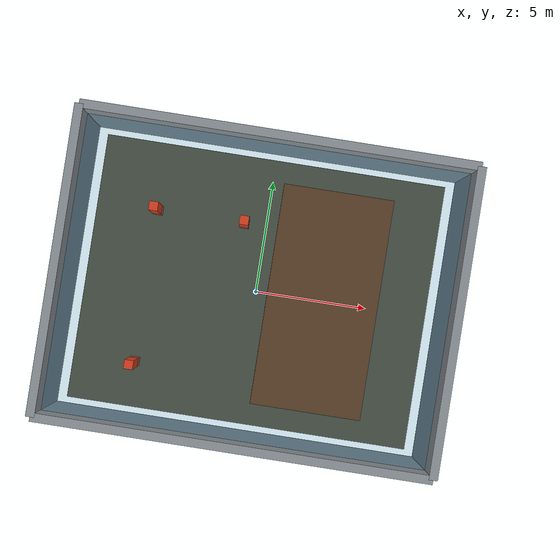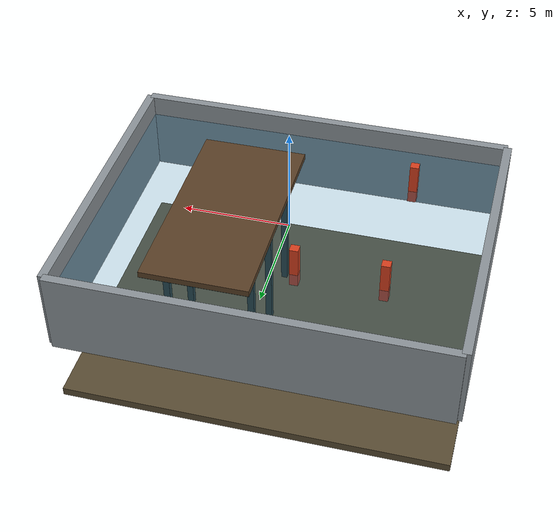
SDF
<?xml version='1.0' encoding='utf-8'?>
<sdf version="1.7">
  <world name="surface_harbor">
    <physics name="marine_physics" type="ode">
      <max_step_size>0.001</max_step_size>
      <real_time_factor>1</real_time_factor>
    </physics>
    <gravity>0 0 -9.81</gravity>
    <plugin filename="ignition-gazebo-physics-system" name="ignition::gazebo::systems::Physics" />
    <plugin filename="ignition-gazebo-user-commands-system" name="ignition::gazebo::systems::UserCommands" />
    <plugin filename="ignition-gazebo-scene-broadcaster-system" name="ignition::gazebo::systems::SceneBroadcaster" />
    <plugin filename="ignition-gazebo-sensors-system" name="ignition::gazebo::systems::Sensors">
      <render_engine>ogre2</render_engine>
    </plugin>
    <plugin filename="ignition-gazebo-imu-system" name="ignition::gazebo::systems::Imu" />
    <plugin filename="ignition-gazebo-buoyancy-system" name="ignition::gazebo::systems::Buoyancy">
      <graded_buoyancy>
        <default_density>1025</default_density>
        <density_change>
          <above_depth>0</above_depth>
          <density>1.225</density>
        </density_change>
      </graded_buoyancy>
      <enable>lab_usv</enable>
    </plugin>
    <scene>
      <ambient>.3 .55 .6 1</ambient>
      <background>.05 .18 .25 1</background>
    </scene>
    <light name="sun" type="directional">
      <pose>0 0 10 0 0 0</pose>
      <diffuse>.8 .9 1 1</diffuse>
      <direction>-.3 .2 -1</direction>
    </light>
    <model name="seafloor">
      <static>true</static>
      <pose>0 0 -6.2 0 0 0</pose>
      <link name="link">
        <visual name="visual">
          <geometry>
            <box>
              <size>18 14 0.4</size>
            </box>
          </geometry>
          <material>
            <ambient>.35 .3 .2 1</ambient>
            <diffuse>.35 .3 .2 1</diffuse>
          </material>
        </visual>
        <collision name="collision">
          <geometry>
            <box>
              <size>18 14 0.4</size>
            </box>
          </geometry>
        </collision>
      </link>
    </model>
    <model name="water_surface">
      <static>true</static>
      <pose>0 0 0 0 0 0</pose>
      <link name="link">
        <visual name="visual">
          <geometry>
            <box>
              <size>18 14 0.015</size>
            </box>
          </geometry>
          <material>
            <ambient>0 .4 .6 .18</ambient>
            <diffuse>0 .4 .6 .18</diffuse>
          </material>
        </visual>
      </link>
    </model>
    <model name="dock">
      <static>true</static>
      <pose>3 0 0.15 0 0 0</pose>
      <link name="link">
        <visual name="visual">
          <geometry>
            <box>
              <size>5 10 0.3</size>
            </box>
          </geometry>
          <material>
            <ambient>.35 .25 .15 1</ambient>
            <diffuse>.35 .25 .15 1</diffuse>
          </material>
        </visual>
        <collision name="collision">
          <geometry>
            <box>
              <size>5 10 0.3</size>
            </box>
          </geometry>
        </collision>
      </link>
    </model>
    <model name="harbor_piling_0">
      <static>true</static>
      <pose>1 -3 -3 0 0 0</pose>
      <link name="link">
        <visual name="visual">
          <geometry>
            <box>
              <size>0.3 0.3 6</size>
            </box>
          </geometry>
          <material>
            <ambient>.2 .22 .2 1</ambient>
            <diffuse>.2 .22 .2 1</diffuse>
          </material>
        </visual>
        <collision name="collision">
          <geometry>
            <box>
              <size>0.3 0.3 6</size>
            </box>
          </geometry>
        </collision>
      </link>
    </model>
    <model name="harbor_piling_1">
      <static>true</static>
      <pose>1 0 -3 0 0 0</pose>
      <link name="link">
        <visual name="visual">
          <geometry>
            <box>
              <size>0.3 0.3 6</size>
            </box>
          </geometry>
          <material>
            <ambient>.2 .22 .2 1</ambient>
            <diffuse>.2 .22 .2 1</diffuse>
          </material>
        </visual>
        <collision name="collision">
          <geometry>
            <box>
              <size>0.3 0.3 6</size>
            </box>
          </geometry>
        </collision>
      </link>
    </model>
    <model name="harbor_piling_2">
      <static>true</static>
      <pose>1 3 -3 0 0 0</pose>
      <link name="link">
        <visual name="visual">
          <geometry>
            <box>
              <size>0.3 0.3 6</size>
            </box>
          </geometry>
          <material>
            <ambient>.2 .22 .2 1</ambient>
            <diffuse>.2 .22 .2 1</diffuse>
          </material>
        </visual>
        <collision name="collision">
          <geometry>
            <box>
              <size>0.3 0.3 6</size>
            </box>
          </geometry>
        </collision>
      </link>
    </model>
    <model name="harbor_piling_3">
      <static>true</static>
      <pose>5 -3 -3 0 0 0</pose>
      <link name="link">
        <visual name="visual">
          <geometry>
            <box>
              <size>0.3 0.3 6</size>
            </box>
          </geometry>
          <material>
            <ambient>.2 .22 .2 1</ambient>
            <diffuse>.2 .22 .2 1</diffuse>
          </material>
        </visual>
        <collision name="collision">
          <geometry>
            <box>
              <size>0.3 0.3 6</size>
            </box>
          </geometry>
        </collision>
      </link>
    </model>
    <model name="harbor_piling_4">
      <static>true</static>
      <pose>5 0 -3 0 0 0</pose>
      <link name="link">
        <visual name="visual">
          <geometry>
            <box>
              <size>0.3 0.3 6</size>
            </box>
          </geometry>
          <material>
            <ambient>.2 .22 .2 1</ambient>
            <diffuse>.2 .22 .2 1</diffuse>
          </material>
        </visual>
        <collision name="collision">
          <geometry>
            <box>
              <size>0.3 0.3 6</size>
            </box>
          </geometry>
        </collision>
      </link>
    </model>
    <model name="harbor_piling_5">
      <static>true</static>
      <pose>5 3 -3 0 0 0</pose>
      <link name="link">
        <visual name="visual">
          <geometry>
            <box>
              <size>0.3 0.3 6</size>
            </box>
          </geometry>
          <material>
            <ambient>.2 .22 .2 1</ambient>
            <diffuse>.2 .22 .2 1</diffuse>
          </material>
        </visual>
        <collision name="collision">
          <geometry>
            <box>
              <size>0.3 0.3 6</size>
            </box>
          </geometry>
        </collision>
      </link>
    </model>
    <model name="harbor_wall_0">
      <static>true</static>
      <pose>9 0 -1 0 0 0</pose>
      <link name="link">
        <visual name="visual">
          <geometry>
            <box>
              <size>0.4 14 4</size>
            </box>
          </geometry>
          <material>
            <ambient>.55 .58 .6 1</ambient>
            <diffuse>.55 .58 .6 1</diffuse>
          </material>
        </visual>
        <collision name="collision">
          <geometry>
            <box>
              <size>0.4 14 4</size>
            </box>
          </geometry>
        </collision>
      </link>
    </model>
    <model name="harbor_wall_1">
      <static>true</static>
      <pose>-9 0 -1 0 0 0</pose>
      <link name="link">
        <visual name="visual">
          <geometry>
            <box>
              <size>0.4 14 4</size>
            </box>
          </geometry>
          <material>
            <ambient>.55 .58 .6 1</ambient>
            <diffuse>.55 .58 .6 1</diffuse>
          </material>
        </visual>
        <collision name="collision">
          <geometry>
            <box>
              <size>0.4 14 4</size>
            </box>
          </geometry>
        </collision>
      </link>
    </model>
    <model name="harbor_wall_2">
      <static>true</static>
      <pose>0 7 -1 0 0 0</pose>
      <link name="link">
        <visual name="visual">
          <geometry>
            <box>
              <size>18 0.4 4</size>
            </box>
          </geometry>
          <material>
            <ambient>.55 .58 .6 1</ambient>
            <diffuse>.55 .58 .6 1</diffuse>
          </material>
        </visual>
        <collision name="collision">
          <geometry>
            <box>
              <size>18 0.4 4</size>
            </box>
          </geometry>
        </collision>
      </link>
    </model>
    <model name="harbor_wall_3">
      <static>true</static>
      <pose>0 -7 -1 0 0 0</pose>
      <link name="link">
        <visual name="visual">
          <geometry>
            <box>
              <size>18 0.4 4</size>
            </box>
          </geometry>
          <material>
            <ambient>.55 .58 .6 1</ambient>
            <diffuse>.55 .58 .6 1</diffuse>
          </material>
        </visual>
        <collision name="collision">
          <geometry>
            <box>
              <size>18 0.4 4</size>
            </box>
          </geometry>
        </collision>
      </link>
    </model>
    <model name="channel_marker_0">
      <static>true</static>
      <pose>-1 3 0.4 0 0 0</pose>
      <link name="link">
        <visual name="visual">
          <geometry>
            <box>
              <size>0.4 0.4 2</size>
            </box>
          </geometry>
          <material>
            <ambient>.85 .25 .12 1</ambient>
            <diffuse>.85 .25 .12 1</diffuse>
          </material>
        </visual>
        <collision name="collision">
          <geometry>
            <box>
              <size>0.4 0.4 2</size>
            </box>
          </geometry>
        </collision>
      </link>
    </model>
    <model name="channel_marker_1">
      <static>true</static>
      <pose>-5 3 0.4 0 0 0</pose>
      <link name="link">
        <visual name="visual">
          <geometry>
            <box>
              <size>0.4 0.4 2</size>
            </box>
          </geometry>
          <material>
            <ambient>.85 .25 .12 1</ambient>
            <diffuse>.85 .25 .12 1</diffuse>
          </material>
        </visual>
        <collision name="collision">
          <geometry>
            <box>
              <size>0.4 0.4 2</size>
            </box>
          </geometry>
        </collision>
      </link>
    </model>
    <model name="channel_marker_2">
      <static>true</static>
      <pose>-5 -4 0.4 0 0 0</pose>
      <link name="link">
        <visual name="visual">
          <geometry>
            <box>
              <size>0.4 0.4 2</size>
            </box>
          </geometry>
          <material>
            <ambient>.85 .25 .12 1</ambient>
            <diffuse>.85 .25 .12 1</diffuse>
          </material>
        </visual>
        <collision name="collision">
          <geometry>
            <box>
              <size>0.4 0.4 2</size>
            </box>
          </geometry>
        </collision>
      </link>
    </model>
  </world>
</sdf>
